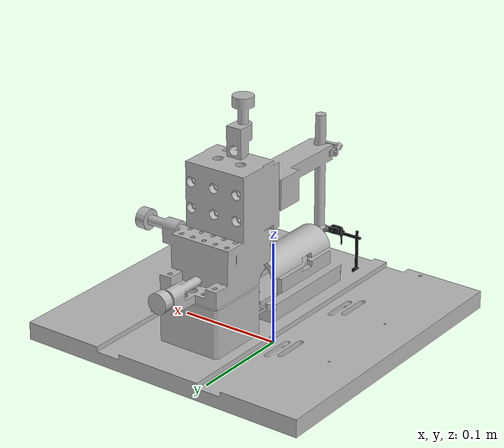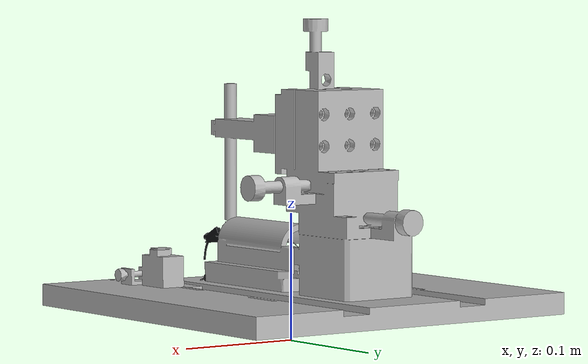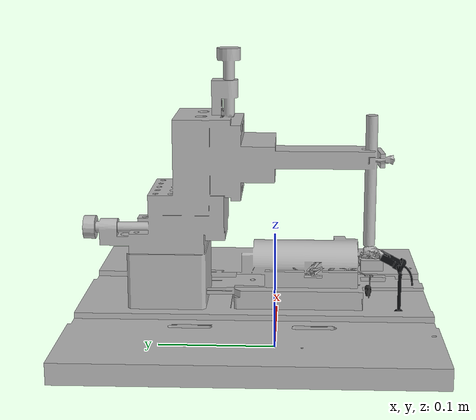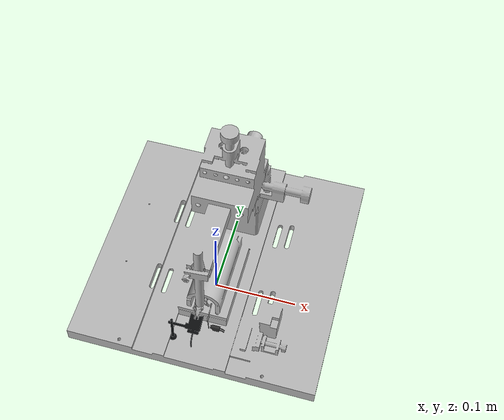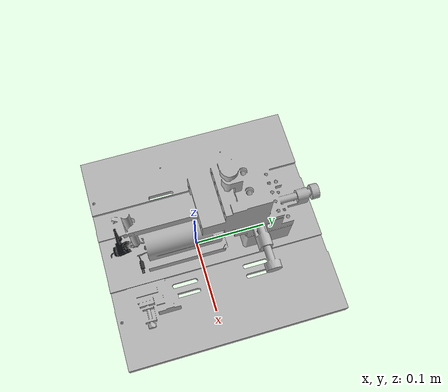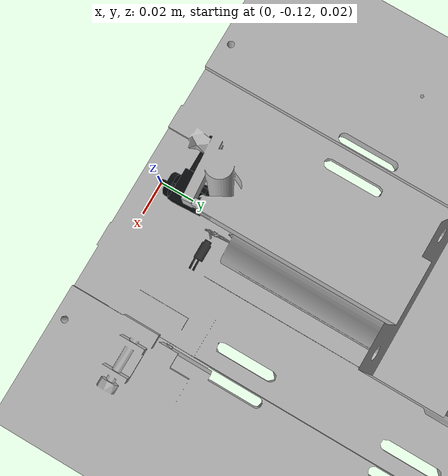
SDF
<?xml version="1.0" ?>
<sdf version="1.6">
  <model name="robobrain_mouse">
    <muscles>model://robobrain_mouse_with_joystick/muscles.osim</muscles>
    <pose>0.0 0.0 0.05119812488555908 0.0 0.0 0.0</pose>
    <link name="Platform">
      <gravity>true</gravity>
      <self_collide>true</self_collide>
      <pose>0.0 0.0 0.0 1.5707963705062866 -0.0 0.0</pose>
      <inertial>
        <mass>7.097300052642822</mass>
        <inertia>
          <ixx>0.09500840306282043</ixx>
          <ixy>0.002506389981135726</ixy>
          <ixz>0.003952070139348507</ixz>
          <iyy>0.06731689721345901</iyy>
          <iyz>-0.010648800060153008</iyz>
          <izz>0.05906679853796959</izz>
        </inertia>
        <pose>0.03797110170125961 -0.14277994632720947 -0.147380992770195 0.0 -0.0 0.0</pose>
      </inertial>
      <visual name="VIS_Base">
        <pose>-0.14780254662036896 -0.02701321616768837 0.13210178911685944 0.0 -0.0 0.0</pose>
        <geometry>
          <mesh>
            <uri>model://robobrain_mouse_with_joystick/meshes/visual/VIS_Base.dae</uri>
            <scale>0.0010121812811121345 0.0010121812811121345 0.0010121812811121345</scale>
          </mesh>
        </geometry>
      </visual>
      <visual name="VIS_Lickometer">
        <pose>0.0 -0.052 0.0 -1.57 0.0 0.0</pose>
        <geometry>
          <mesh>
            <uri>model://robobrain_mouse_with_joystick/meshes/visual/VIS_lickometer.dae</uri>
            <scale>1.0 1.0 1.0</scale>
          </mesh>
        </geometry>
      </visual>
      <visual name="VIS_Magnet">
        <pose>0.0 -0.047 0.0 -1.57 0.0 0.0</pose>
        <geometry>
          <mesh>
            <uri>model://robobrain_mouse_with_joystick/meshes/visual/VIS_magnet.dae</uri>
            <scale>1.0 1.0 1.0</scale>
          </mesh>
        </geometry>
      </visual>
    </link>

    <link name="Mouse">
      <gravity>true</gravity>
      <self_collide>true</self_collide>
      <pose>0.0 -0.05000000161928579 0.01999999736739561 1.5707963705062866 -0.0 0.0</pose>
      <inertial>
        <mass>7.097300052642822</mass>
        <inertia>
          <ixx>0.09500840306282043</ixx>
          <ixy>0.002506389981135726</ixy>
          <ixz>0.003952070139348507</ixz>
          <iyy>0.06731689721345901</iyy>
          <iyz>-0.010648800060153008</iyz>
          <izz>0.05906679853796959</izz>
        </inertia>
        <pose>0.03797110170125961 -0.14277982711791992 -0.147380992770195 0.0 -0.0 0.0</pose>
      </inertial>
      <visual name="VIS_Mouse">
        <pose>0.003453699639067054 -0.0028929547406733036 -0.01957360841333866 -1.5709353685379028 0.7177180051803589 -1.5713286399841309</pose>
        <geometry>
          <mesh>
            <uri>model://robobrain_mouse_with_joystick/meshes/visual/VIS_Mouse.dae</uri>
            <scale>0.0014999998966231942 0.0015000001294538379 0.0014999997802078724</scale>
          </mesh>
        </geometry>
      </visual>
    </link>
    <link name="humerus_helper">
      <gravity>true</gravity>
      <self_collide>true</self_collide>
      <pose>0.010209999978542328 -0.06900000118318374 0.023999996726869026 1.542825467366143 0.9986455375795587 1.1093407159998407</pose>
      <inertial>
        <mass>9.999999747378752e-06</mass>
        <inertia>
          <ixx>9.999999747378752e-06</ixx>
          <ixy>0.0</ixy>
          <ixz>0.0</ixz>
          <iyy>9.999999747378752e-06</iyy>
          <iyz>0.0</iyz>
          <izz>9.999999747378752e-06</izz>
        </inertia>
        <pose>0.005032109562307596 3.2343436032533646e-05 -2.9610004276037216e-05 2.129180742826975e-08 2.70710103222882e-07 -3.9541927776554076e-07</pose>
      </inertial>
    </link>
    <link name="humerus">
      <gravity>true</gravity>
      <self_collide>true</self_collide>
      <pose>0.010209999978542324 -0.06900000118318375 0.02399999672686903 1.542825467366143 0.9986455375795587 1.1093407159998407</pose>
      <inertial>
        <mass>5.199999941396527e-05</mass>
        <inertia>
          <ixx>1.2712433772321674e-06</ixx>
          <ixy>0.0</ixy>
          <ixz>0.0</ixz>
          <iyy>1.3205350114731118e-05</iyy>
          <iyz>0.0</iyz>
          <izz>1.3603204934042878e-05</izz>
        </inertia>
        <pose>0.005032116547226906 -0.00031875958666205406 -2.9642600566148758e-05 8.382669136608456e-08 2.984017157814378e-07 -2.9514640687011706e-07</pose>
      </inertial>
      <visual name="VIS_humerus">
        <pose>-7.07975123077631e-05 -0.0002240138128399849 0.00010498473420739174 -0.09781750291585922 0.01357477530837059 0.00404458399862051</pose>
        <geometry>
          <mesh>
            <uri>model://robobrain_mouse_with_joystick/meshes/visual/VIS_humerus.dae</uri>
            <scale>0.0014999998966231942 0.0014999998966231942 0.0015000001294538379</scale>
          </mesh>
        </geometry>
      </visual>
    </link>
    <link name="radius">
      <gravity>true</gravity>
      <self_collide>true</self_collide>
      <pose>0.012754336418336468 -0.06388269462527486 0.015108122725382528 -0.11053884467084815 0.4568355218681035 -1.66897435863959</pose>
      <inertial>
        <mass>2.700000004551839e-05</mass>
        <inertia>
          <ixx>1.0198847348874551e-06</ixx>
          <ixy>0.0</ixy>
          <ixz>0.0</ixz>
          <iyy>2.106719693983905e-05</iyy>
          <iyz>0.0</iyz>
          <izz>2.0488319933065213e-05</izz>
        </inertia>
        <pose>0.005458442494273186 2.908380702137947e-05 -0.000428160245064646 1.9337335288582835e-07 -1.6073765607416135e-07 -3.525057650222152e-07</pose>
      </inertial>
      <visual name="VIS_radius">
        <pose>0.0001676500542089343 -0.00010157003998756409 2.8645561542361975e-05 -0.004234097432345152 -0.021329553797841072 0.09648960828781128</pose>
        <geometry>
          <mesh>
            <uri>model://robobrain_mouse_with_joystick/meshes/visual/VIS_radius.dae</uri>
            <scale>0.001500000013038516 0.0014999998966231942 0.001500000013038516</scale>
          </mesh>
        </geometry>
      </visual>
    </link>
    <link name="foot">
      <gravity>true</gravity>
      <self_collide>true</self_collide>
      <pose>0.01163597668248156 -0.07530993725084861 0.009719069469037563 1.5311709599313936 0.11122424297762318 -1.614582249052229</pose>
      <inertial>
        <mass>9.000000318337698e-06</mass>
        <inertia>
          <ixx>5.463311936182436e-07</ixx>
          <ixy>0.0</ixy>
          <ixz>0.0</ixz>
          <iyy>4.960554633726133e-06</iyy>
          <iyz>0.0</iyz>
          <izz>4.59005605080165e-06</izz>
        </inertia>
        <pose>0.003787823487073183 -0.00027603734633885324 0.00010534049943089485 3.6688294358100393e-07 3.915241464369501e-08 2.422318061690021e-07</pose>
      </inertial>
      <visual name="VIS_foot">
        <pose>0.00021686701802536845 0.00017935707001015544 -0.001129148993641138 0.030482975766062737 0.09258054941892624 0.01804688759148121</pose>
        <geometry>
          <mesh>
            <uri>model://robobrain_mouse_with_joystick/meshes/visual/VIS_foot.dae</uri>
            <scale>0.0014999998966231942 0.0014999998966231942 0.0014999998966231942</scale>
          </mesh>
        </geometry>
      </visual>
    </link>
    <link name="joystick">
      <gravity>true</gravity>
      <self_collide>true</self_collide>
      <pose>0.011408052655197313 -0.08024051858970864 0.008866181909253574 1.611924171334564 -0.019593216819736956 -0.0767557214851128</pose>
      <inertial>
        <mass>5.199999941396527e-05</mass>
        <inertia>
          <ixx>2.2342641386785544e-05</ixx>
          <ixy>0.0</ixy>
          <ixz>0.0</ixz>
          <iyy>2.2342641386785544e-05</iyy>
          <iyz>0.0</iyz>
          <izz>1.5624367222244473e-07</izz>
        </inertia>
        <pose>-2.8475886210799217e-05 -0.008054349571466446 2.7910107746720314e-05 -1.5739771127700806 -0.008658056147396564 -0.003994331229478121</pose>
      </inertial>
      <visual name="VIS_joystick">
        <pose>0.0019823864568024874 -0.012593939900398254 0.00 -1.5825437307357788 0.08282089233398438 0.03220358490943909</pose>
        <geometry>
          <mesh>
            <uri>model://robobrain_mouse_with_joystick/meshes/visual/VIS_joystick.dae</uri>
            <scale>0.0004850113473366946 0.0004842984490096569 0.012190139852464199</scale>
          </mesh>
        </geometry>
      </visual>
    </link>
    <link name="joystick_helper">
      <gravity>true</gravity>
      <self_collide>true</self_collide>
      <pose>0.011977112495484308 -0.07923570536771501 -0.016091086839363167 1.611924171334564 -0.019593216819736952 -0.07675572148511278</pose>
      <inertial>
        <mass>9.999999747378752e-06</mass>
        <inertia>
          <ixx>9.999999747378752e-06</ixx>
          <ixy>0.0</ixy>
          <ixz>0.0</ixz>
          <iyy>9.999999747378752e-06</iyy>
          <iyz>0.0</iyz>
          <izz>9.999999747378752e-06</izz>
        </inertia>
        <pose>9.720679372549057e-09 3.729655873030424e-07 2.695014700293541e-08 2.4713704416257087e-09 -4.46747705495909e-09 -7.604216145651321e-10</pose>
      </inertial>
    </link>
    <joint name="Platform_joint" type="fixed">
      <parent>world</parent>
      <child>Platform</child>
      <axis>
        <xyz>1.0 0.0 0.0</xyz>
        <dynamics>
          <damping>0.0</damping>
          <friction>0.0</friction>
          <spring_reference>0.0</spring_reference>
          <spring_stiffness>0.0</spring_stiffness>
        </dynamics>
        <limit>
          <lower>-1.5707963267948966</lower>
          <upper>1.5707963267948966</upper>
        </limit>
      </axis>
      <physics>
        <ode>
          <cfm_damping>false</cfm_damping>
          <implicit_spring_damper>false</implicit_spring_damper>
          <cfm>0.0</cfm>
          <erp>0.20000000298023224</erp>
        </ode>
      </physics>
    </joint>
    <joint name="Mouse_joint" type="fixed">
      <parent>Platform</parent>
      <child>Mouse</child>
      <axis>
        <xyz>1.0 0.0 0.0</xyz>
        <dynamics>
          <damping>0.0</damping>
          <friction>0.0</friction>
          <spring_reference>0.0</spring_reference>
          <spring_stiffness>0.0</spring_stiffness>
        </dynamics>
        <limit>
          <lower>-1.5707963267948966</lower>
          <upper>1.5707963267948966</upper>
        </limit>
      </axis>
      <physics>
        <ode>
          <cfm_damping>false</cfm_damping>
          <implicit_spring_damper>false</implicit_spring_damper>
          <cfm>0.0</cfm>
          <erp>0.20000000298023224</erp>
        </ode>
      </physics>
    </joint>
    <joint name="world_humerus" type="revolute">
      <parent>Mouse</parent>
      <child>humerus_helper</child>
      <axis>
        <xyz>0.0 0.0 1.0</xyz>
        <dynamics>
          <damping>9.999999747378752e-05</damping>
          <friction>0.0</friction>
          <spring_reference>0.0</spring_reference>
          <spring_stiffness>0.0</spring_stiffness>
        </dynamics>
        <limit>
          <lower>-0.3</lower>
          <upper>0.3</upper>
        </limit>
      </axis>
      <physics>
        <ode>
          <cfm_damping>false</cfm_damping>
          <implicit_spring_damper>false</implicit_spring_damper>
          <cfm>0.0</cfm>
          <erp>0.20000000298023224</erp>
        </ode>
      </physics>
    </joint>
    <joint name="humerus_helper_joint" type="revolute">
      <parent>humerus_helper</parent>
      <child>humerus</child>
      <axis>
        <xyz>0.0 1.0 0.0</xyz>
        <dynamics>
          <damping>9.999999747378752e-05</damping>
          <friction>0.0</friction>
          <spring_reference>0.0</spring_reference>
          <spring_stiffness>0.0</spring_stiffness>
        </dynamics>
        <limit>
          <lower>-0.3</lower>
          <upper>0.1</upper>
        </limit>
      </axis>
      <physics>
        <ode>
          <cfm_damping>false</cfm_damping>
          <implicit_spring_damper>false</implicit_spring_damper>
          <cfm>0.0</cfm>
          <erp>0.20000000298023224</erp>
        </ode>
      </physics>
    </joint>
    <joint name="humerus_radius" type="revolute">
      <parent>humerus</parent>
      <child>radius</child>
      <axis>
        <xyz>0.0 1.0 0.0</xyz>
        <dynamics>
          <damping>9.999999747378752e-06</damping>
          <friction>0.0</friction>
          <spring_reference>0.0</spring_reference>
          <spring_stiffness>0.0</spring_stiffness>
        </dynamics>
        <limit>
          <lower>-1.0000000116728047</lower>
          <upper>1.0459999942334164</upper>
        </limit>
      </axis>
      <physics>
        <ode>
          <cfm_damping>false</cfm_damping>
          <implicit_spring_damper>false</implicit_spring_damper>
          <cfm>0.0</cfm>
          <erp>0.20000000298023224</erp>
        </ode>
      </physics>
    </joint>
    <joint name="radius_foot" type="revolute">
      <parent>radius</parent>
      <child>foot</child>
      <axis>
        <xyz>0.0 0.0 1.0</xyz>
        <dynamics>
          <damping>9.999999974752427e-07</damping>
          <friction>0.0</friction>
          <spring_reference>0.0</spring_reference>
          <spring_stiffness>0.0</spring_stiffness>
        </dynamics>
        <limit>
          <lower>-0.2</lower>
          <upper>0.2</upper>
        </limit>
      </axis>
      <physics>
        <ode>
          <cfm_damping>false</cfm_damping>
          <implicit_spring_damper>false</implicit_spring_damper>
          <cfm>0.0</cfm>
          <erp>0.20000000298023224</erp>
        </ode>
      </physics>
    </joint>
    <joint name="foot_joystick" type="ball">
      <parent>foot</parent>
      <child>joystick</child>
      <axis>
        <xyz>1.0 0.0 0.0</xyz>
        <dynamics>
          <damping>9.999999747378752e-05</damping>
          <friction>0.0</friction>
          <spring_reference>0.0</spring_reference>
          <spring_stiffness>0.0</spring_stiffness>
        </dynamics>
      </axis>
      <physics>
        <ode>
          <cfm_damping>false</cfm_damping>
          <implicit_spring_damper>false</implicit_spring_damper>
          <cfm>0.0</cfm>
          <erp>0.20000000298023224</erp>
        </ode>
      </physics>
    </joint>
    <joint name="joystick_helper_joint" type="revolute">
      <parent>joystick</parent>
      <child>joystick_helper</child>
      <axis>
        <xyz>1.0 0.0 0.0</xyz>
        <dynamics>
          <damping>1.0000000656873453e-03</damping>
          <friction>0.0</friction>
          <spring_reference>0.0</spring_reference>
          <spring_stiffness>0.0</spring_stiffness>
        </dynamics>
        <limit>
          <lower>-0.3</lower>
          <upper>0.3</upper>
        </limit>
      </axis>
      <physics>
        <ode>
          <cfm_damping>false</cfm_damping>
          <implicit_spring_damper>false</implicit_spring_damper>
          <cfm>0.0</cfm>
          <erp>0.20000000298023224</erp>
        </ode>
      </physics>
    </joint>
    <joint name="joystick_world_joint" type="revolute">
      <parent>world</parent>
      <child>joystick_helper</child>
      <axis>
        <xyz>0.0 0.0 1.0</xyz>
        <dynamics>
          <damping>9.999999747378752e-03</damping>
          <friction>0.0</friction>
          <spring_reference>0.0</spring_reference>
          <spring_stiffness>0.0</spring_stiffness>
        </dynamics>
        <limit>
          <lower>-0.3</lower>
          <upper>0.3</upper>
        </limit>
      </axis>
      <physics>
        <ode>
          <cfm_damping>false</cfm_damping>
          <implicit_spring_damper>false</implicit_spring_damper>
          <cfm>0.0</cfm>
          <erp>0.20000000298023224</erp>
        </ode>
      </physics>
    </joint>
    <plugin filename="libgazebo_ros_muscle_interface.so" name="muscle_interface_plugin"/>
  </model>
</sdf>
